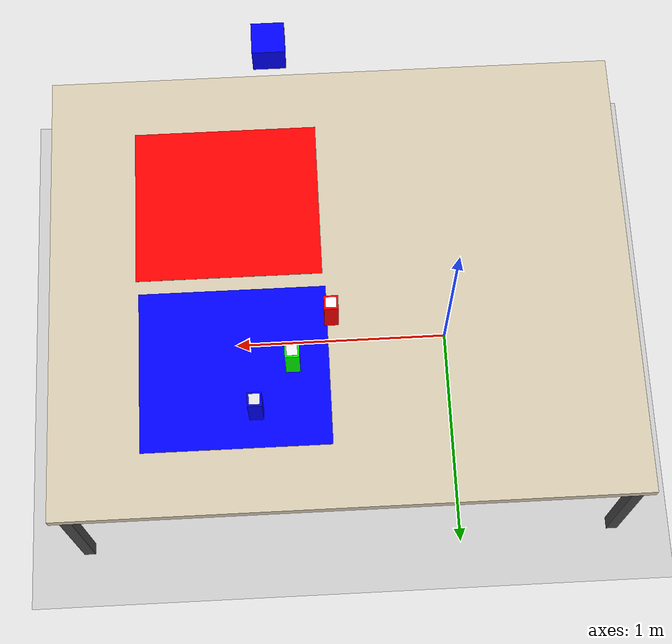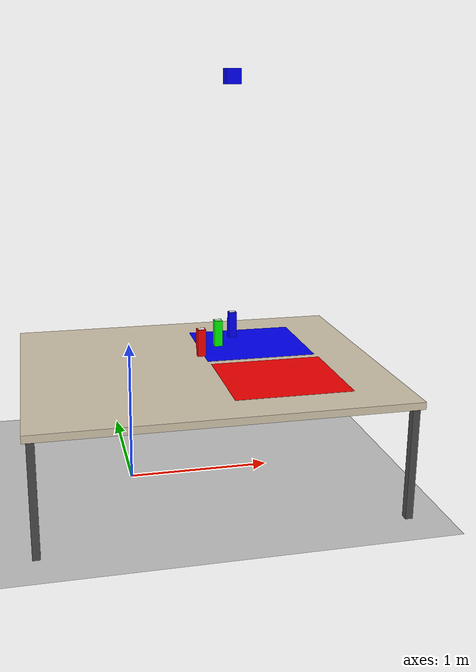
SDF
<?xml version="1.0" ?>
<sdf version="1.9">

  <world name="camera_world">

    <physics type="ode">
      <max_step_size>0.001</max_step_size>
      <real_time_factor>1.0</real_time_factor>
    </physics>

    <plugin filename="gz-sim-physics-system" name="gz::sim::systems::Physics"/>
    <plugin filename="gz-sim-user-commands-system" name="gz::sim::systems::UserCommands"/>
    <plugin filename="gz-sim-scene-broadcaster-system" name="gz::sim::systems::SceneBroadcaster"/>
    <plugin filename="gz-sim-sensors-system" name="gz::sim::systems::Sensors">
      <render_engine>ogre2</render_engine>
    </plugin>
    <plugin filename="libgz_ros2_control-system.so" name="gz_ros2_control::GazeboSimROS2ControlPlugin"/>

    <scene>
      <ambient>0.7 0.7 0.7 1</ambient>
      <background>0.5 0.5 0.5 1</background>
    </scene>

    <light type="directional" name="sun">
      <cast_shadows>false</cast_shadows>
      <pose>0 0 10 0 0 0</pose>
      <diffuse>0.5 0.5 0.55 1</diffuse>
      <specular>0.1 0.1 0.1 1</specular>
      <direction>-0.5 0.1 -0.9</direction>
    </light>

    <model name="ground_plane">
      <static>true</static>
      <link name="link">
        <collision name="c"><geometry><plane><normal>0 0 1</normal><size>100 100</size></plane></geometry></collision>
        <visual name="v"><geometry><plane><normal>0 0 1</normal><size>100 100</size></plane></geometry>
          <material><ambient>0.8 0.8 0.8 1</ambient><diffuse>0.8 0.8 0.8 1</diffuse></material></visual>
      </link>
    </model>

    <!-- TABLE — 2.5m × 2.0m，前移使工作区域居中 -->
    <model name="table">
      <static>true</static>
      <pose>0.5 0 0 0 0 0</pose>
      <link name="table_top">
        <pose>0 0 0.8 0 0 0</pose>
        <collision name="c"><geometry><box><size>2.5 2.0 0.05</size></box></geometry></collision>
        <visual name="v"><geometry><box><size>2.5 2.0 0.05</size></box></geometry>
          <material><ambient>0.85 0.80 0.70 1</ambient><diffuse>0.85 0.80 0.70 1</diffuse></material></visual>
      </link>
      <link name="leg_1"><pose> 1.20  0.95 0.4 0 0 0</pose>
        <collision name="c"><geometry><box><size>0.05 0.05 0.8</size></box></geometry></collision>
        <visual name="v"><geometry><box><size>0.05 0.05 0.8</size></box></geometry>
          <material><ambient>0.3 0.3 0.3 1</ambient><diffuse>0.3 0.3 0.3 1</diffuse></material></visual></link>
      <link name="leg_2"><pose> 1.20 -0.95 0.4 0 0 0</pose>
        <collision name="c"><geometry><box><size>0.05 0.05 0.8</size></box></geometry></collision>
        <visual name="v"><geometry><box><size>0.05 0.05 0.8</size></box></geometry>
          <material><ambient>0.3 0.3 0.3 1</ambient><diffuse>0.3 0.3 0.3 1</diffuse></material></visual></link>
      <link name="leg_3"><pose>-1.20  0.95 0.4 0 0 0</pose>
        <collision name="c"><geometry><box><size>0.05 0.05 0.8</size></box></geometry></collision>
        <visual name="v"><geometry><box><size>0.05 0.05 0.8</size></box></geometry>
          <material><ambient>0.3 0.3 0.3 1</ambient><diffuse>0.3 0.3 0.3 1</diffuse></material></visual></link>
      <link name="leg_4"><pose>-1.20 -0.95 0.4 0 0 0</pose>
        <collision name="c"><geometry><box><size>0.05 0.05 0.8</size></box></geometry></collision>
        <visual name="v"><geometry><box><size>0.05 0.05 0.8</size></box></geometry>
          <material><ambient>0.3 0.3 0.3 1</ambient><diffuse>0.3 0.3 0.3 1</diffuse></material></visual></link>
    </model>

    <!-- CAMERA -->
    <model name="top_camera">
      <static>true</static>
      <pose>0.72 0 2.8 0 1.5707 0</pose>
      <link name="camera_link">
        <visual name="v"><geometry><box><size>0.1 0.1 0.1</size></box></geometry>
          <material><ambient>0 0 1 1</ambient><diffuse>0 0 1 1</diffuse></material></visual>
        <sensor name="camera_sensor" type="camera">
          <always_on>true</always_on><update_rate>30</update_rate><visualize>true</visualize>
          <topic>/top_camera/image</topic>
          <camera name="camera">
            <horizontal_fov>1.047</horizontal_fov>
            <image><width>640</width><height>480</height><format>R8G8B8</format></image>
            <clip><near>0.1</near><far>100</far></clip>
          </camera>
        </sensor>
      </link>
    </model>

    <!-- BOX 1 — 红色长方体 -->
    <model name="box_1">
      <pose>0.55 0.18 0.925 0 0 0</pose>
      <link name="link">
        <inertial>
          <mass>0.2</mass>
          <inertia>
            <ixx>0.00068</ixx><iyy>0.00068</iyy><izz>0.00012</izz>
            <ixy>0</ixy><ixz>0</ixz><iyz>0</iyz>
          </inertia>
        </inertial>
        <collision name="c">
          <geometry><box><size>0.06 0.06 0.20</size></box></geometry>
          <surface>
            <friction><ode><mu>0.8</mu><mu2>0.5</mu2></ode></friction>
            <contact><ode>
              <kp>1e6</kp><kd>100</kd>
              <soft_cfm>0.0</soft_cfm><soft_erp>0.2</soft_erp>
              <min_depth>0.001</min_depth><max_vel>0.1</max_vel>
            </ode></contact>
          </surface>
        </collision>
        <visual name="v">
          <geometry><box><size>0.06 0.06 0.20</size></box></geometry>
          <material><ambient>1 0 0 1</ambient><diffuse>1 0 0 1</diffuse></material>
        </visual>
        <!-- ArUco marker (ID=0) on top -->
        <visual name="aruco_marker_0">
          <pose>0 0 0.1015 0 0 0</pose>
          <geometry><box><size>0.045 0.045 0.001</size></box></geometry>
          <material>
            <ambient>1 1 1 1</ambient>
            <diffuse>1 1 1 1</diffuse>
          </material>
        </visual>
      </link>
    </model>

    <!-- BOX 2 — 绿色长方体 -->
    <model name="box_2">
      <pose>0.72 0.38 0.925 0 0 0</pose>
      <link name="link">
        <inertial>
          <mass>0.2</mass>
          <inertia>
            <ixx>0.00068</ixx><iyy>0.00068</iyy><izz>0.00012</izz>
            <ixy>0</ixy><ixz>0</ixz><iyz>0</iyz>
          </inertia>
        </inertial>
        <collision name="c">
          <geometry><box><size>0.06 0.06 0.20</size></box></geometry>
          <surface>
            <friction><ode><mu>0.8</mu><mu2>0.5</mu2></ode></friction>
            <contact><ode>
              <kp>1e6</kp><kd>100</kd>
              <soft_cfm>0.0</soft_cfm><soft_erp>0.2</soft_erp>
              <min_depth>0.001</min_depth><max_vel>0.1</max_vel>
            </ode></contact>
          </surface>
        </collision>
        <visual name="v">
          <geometry><box><size>0.06 0.06 0.20</size></box></geometry>
          <material><ambient>0 1 0 1</ambient><diffuse>0 1 0 1</diffuse></material>
        </visual>
        <!-- ArUco marker (ID=1) on top -->
        <visual name="aruco_marker_1">
          <pose>0 0 0.1015 0 0 0</pose>
          <geometry><box><size>0.045 0.045 0.001</size></box></geometry>
          <material>
            <ambient>0.95 0.95 0.95 1</ambient>
            <diffuse>0.95 0.95 0.95 1</diffuse>
          </material>
        </visual>
      </link>
    </model>

    <!-- BOX 3 — 蓝色长方体 -->
    <model name="box_3">
      <pose>0.88 0.58 0.925 0 0 0</pose>
      <link name="link">
        <inertial>
          <mass>0.2</mass>
          <inertia>
            <ixx>0.00068</ixx><iyy>0.00068</iyy><izz>0.00012</izz>
            <ixy>0</ixy><ixz>0</ixz><iyz>0</iyz>
          </inertia>
        </inertial>
        <collision name="c">
          <geometry><box><size>0.06 0.06 0.20</size></box></geometry>
          <surface>
            <friction><ode><mu>0.8</mu><mu2>0.5</mu2></ode></friction>
            <contact><ode>
              <kp>1e6</kp><kd>100</kd>
              <soft_cfm>0.0</soft_cfm><soft_erp>0.2</soft_erp>
              <min_depth>0.001</min_depth><max_vel>0.1</max_vel>
            </ode></contact>
          </surface>
        </collision>
        <visual name="v">
          <geometry><box><size>0.06 0.06 0.20</size></box></geometry>
          <material><ambient>0 0 1 1</ambient><diffuse>0 0 1 1</diffuse></material>
        </visual>
        <!-- ArUco marker (ID=2) on top -->
        <visual name="aruco_marker_2">
          <pose>0 0 0.1015 0 0 0</pose>
          <geometry><box><size>0.045 0.045 0.001</size></box></geometry>
          <material>
            <ambient>0.9 0.9 0.9 1</ambient>
            <diffuse>0.9 0.9 0.9 1</diffuse>
          </material>
        </visual>
      </link>
    </model>

    <!-- BLUE ZONE — 前方 +X+Y，随机生成区域 0.80m × 0.70m -->
    <model name="blue_zone">
      <static>true</static>
      <pose>0.968 0.38 0.8255 0 0 0</pose>
      <link name="link">
        <visual name="v">
          <geometry><box><size>0.80 0.70 0.001</size></box></geometry>
          <material>
            <ambient>0 0 1 1</ambient>
            <diffuse>0 0 1 1</diffuse>
            <emissive>0 0 0.4 0.4</emissive>
          </material>
        </visual>
      </link>
    </model>

    <!-- RED ZONE — 前方 +X-Y，放置区域 0.80m × 0.70m -->
    <model name="red_zone">
      <static>true</static>
      <pose>0.979 -0.38 0.8255 0 0 0</pose>
      <link name="link">
        <visual name="v">
          <geometry><box><size>0.80 0.70 0.001</size></box></geometry>
          <material>
            <ambient>1 0 0 1</ambient>
            <diffuse>1 0 0 1</diffuse>
            <emissive>0.4 0 0 0.4</emissive>
          </material>
        </visual>
      </link>
    </model>

  </world>

</sdf>
